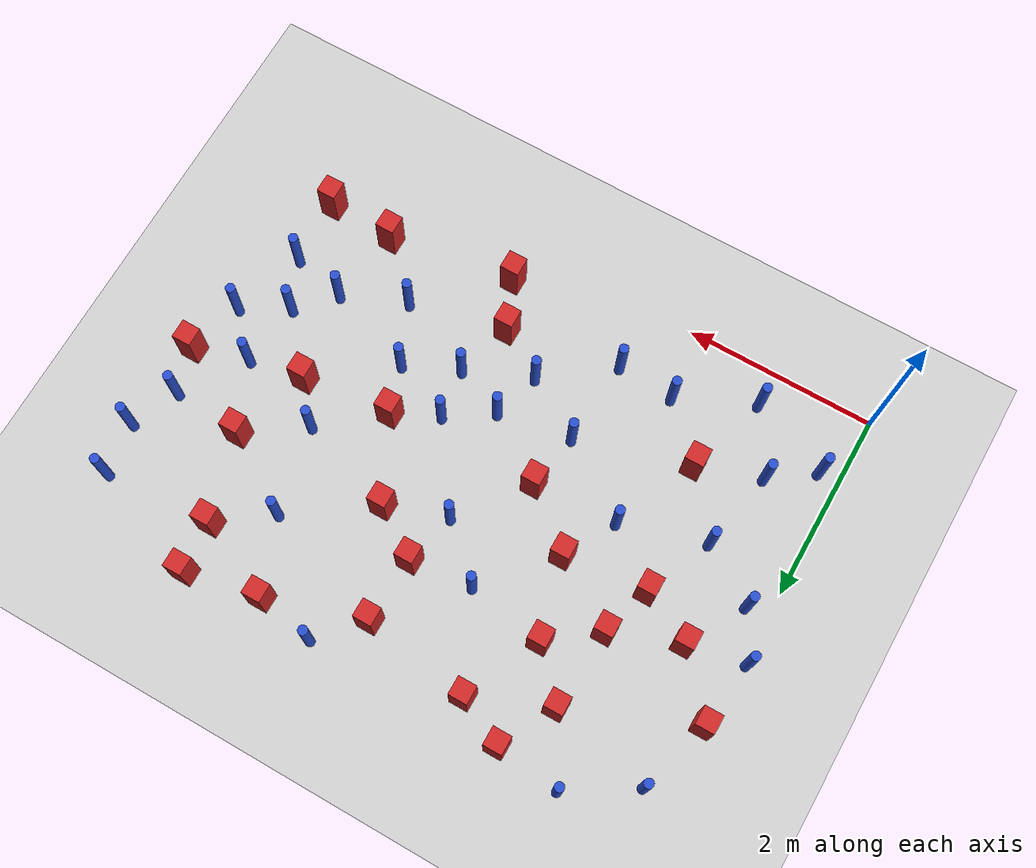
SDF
<sdf version="1.6">
 <world name="default">
  <model name="ground_plane">
   <static>1</static>
   <link name="link">
    <collision name="collision">
     <geometry><plane><normal>0 0 1</normal><size>100 100</size></plane></geometry>
     <surface><friction><ode><mu>100</mu><mu2>50</mu2></ode></friction></surface>
    </collision>
    <visual name="visual">
     <cast_shadows>0</cast_shadows>
     <geometry><plane><normal>0 0 1</normal><size>100 100</size></plane></geometry>
     <material>
      <ambient>1.0 1.0 1.0 1.0</ambient>
      <diffuse>0.8 0.8 0.8 1.0</diffuse>
      <specular>0.01 0.01 0.01 1.000000</specular>
     </material>
    </visual>
   </link>
  </model>
  <model name="square_post_obstacle2">
   <static>true</static>
   <pose>1.13025844479 2.6362197679 -6.11067671241e-07 -5.50515727128e-06 -8.79689657224e-07 2.37013304536e-05</pose>
   <link name="link">
    <pose>0 0 0.25 0 -0 0</pose>
    <inertial>
     <mass>100</mass>
     <inertia>
      <ixx>0.166667</ixx>
      <ixy>0</ixy>
      <ixz>0</ixz>
      <iyy>0.166667</iyy>
      <iyz>0</iyz>
      <izz>0.166667</izz>
     </inertia>
    </inertial>
    <collision name="collision"><geometry><box><size>.2 .2 .5</size></box></geometry></collision>
    <visual name="visual">
     <geometry><box><size>.2 .2 .5</size></box></geometry>
     <material>
      <script><name>Gazebo/Red</name><uri>file://media/materials/scripts/gazebo.material</uri></script>
     </material>
    </visual>
   </link>
  </model>
  <model name="square_post_obstacle5">
   <static>true</static>
   <pose>5.88952269268 0.614847959683 -6.11067671241e-07 -5.50515727128e-06 -8.79689657224e-07 2.37013304536e-05</pose>
   <link name="link">
    <pose>0 0 0.25 0 -0 0</pose>
    <inertial>
     <mass>100</mass>
     <inertia>
      <ixx>0.166667</ixx>
      <ixy>0</ixy>
      <ixz>0</ixz>
      <iyy>0.166667</iyy>
      <iyz>0</iyz>
      <izz>0.166667</izz>
     </inertia>
    </inertial>
    <collision name="collision"><geometry><box><size>.2 .2 .5</size></box></geometry></collision>
    <visual name="visual">
     <geometry><box><size>.2 .2 .5</size></box></geometry>
     <material>
      <script><name>Gazebo/Red</name><uri>file://media/materials/scripts/gazebo.material</uri></script>
     </material>
    </visual>
   </link>
  </model>
  <model name="square_post_obstacle6">
   <static>true</static>
   <pose>1.65782536818 4.62494805286 -6.11067671241e-07 -5.50515727128e-06 -8.79689657224e-07 2.37013304536e-05</pose>
   <link name="link">
    <pose>0 0 0.25 0 -0 0</pose>
    <inertial>
     <mass>100</mass>
     <inertia>
      <ixx>0.166667</ixx>
      <ixy>0</ixy>
      <ixz>0</ixz>
      <iyy>0.166667</iyy>
      <iyz>0</iyz>
      <izz>0.166667</izz>
     </inertia>
    </inertial>
    <collision name="collision"><geometry><box><size>.2 .2 .5</size></box></geometry></collision>
    <visual name="visual">
     <geometry><box><size>.2 .2 .5</size></box></geometry>
     <material>
      <script><name>Gazebo/Red</name><uri>file://media/materials/scripts/gazebo.material</uri></script>
     </material>
    </visual>
   </link>
  </model>
  <model name="pole_obstacle20">
   <static>true</static>
   <pose>0.233315141441 2.30578505208 -9.4761961606e-06 5.49618799729e-07 2.36310413995e-07 -1.55090534826e-07</pose>
   <link name="link">
    <pose>0 0 0.3 0 -0 0</pose>
    <inertial>
     <mass>1</mass>
     <inertia><ixx>0.145833</ixx><ixy>0</ixy><ixz>0</ixz><iyy>0.145833</iyy><iyz>0</iyz><izz>0.125</izz></inertia>
    </inertial>
    <collision name="collision">
     <geometry><cylinder><radius>0.05</radius><length>.6</length></cylinder></geometry>
    </collision>
    <visual name="visual">
     <geometry><cylinder><radius>0.05</radius><length>.6</length></cylinder></geometry>
     <material>
      <script><name>Gazebo/Blue</name><uri>file://media/materials/scripts/gazebo.material</uri></script>
     </material>
    </visual>
   </link>
  </model>
  <model name="square_post_obstacle18">
   <static>true</static>
   <pose>2.15944700012 4.38585162193 -6.11067671241e-07 -5.50515727128e-06 -8.79689657224e-07 2.37013304536e-05</pose>
   <link name="link">
    <pose>0 0 0.25 0 -0 0</pose>
    <inertial>
     <mass>100</mass>
     <inertia>
      <ixx>0.166667</ixx>
      <ixy>0</ixy>
      <ixz>0</ixz>
      <iyy>0.166667</iyy>
      <iyz>0</iyz>
      <izz>0.166667</izz>
     </inertia>
    </inertial>
    <collision name="collision"><geometry><box><size>.2 .2 .5</size></box></geometry></collision>
    <visual name="visual">
     <geometry><box><size>.2 .2 .5</size></box></geometry>
     <material>
      <script><name>Gazebo/Red</name><uri>file://media/materials/scripts/gazebo.material</uri></script>
     </material>
    </visual>
   </link>
  </model>
  <model name="pole_obstacle25">
   <static>true</static>
   <pose>5.64802174757 1.83565725501 -9.47619616065e-06 5.49618799738e-07 2.36310414071e-07 -1.55090534796e-07</pose>
   <link name="link">
    <pose>0 0 0.3 0 -0 0</pose>
    <inertial>
     <mass>1</mass>
     <inertia><ixx>0.145833</ixx><ixy>0</ixy><ixz>0</ixz><iyy>0.145833</iyy><iyz>0</iyz><izz>0.125</izz></inertia>
    </inertial>
    <collision name="collision">
     <geometry><cylinder><radius>0.05</radius><length>.6</length></cylinder></geometry>
    </collision>
    <visual name="visual">
     <geometry><cylinder><radius>0.05</radius><length>.6</length></cylinder></geometry>
     <material>
      <script><name>Gazebo/Blue</name><uri>file://media/materials/scripts/gazebo.material</uri></script>
     </material>
    </visual>
   </link>
  </model>
  <model name="square_post_obstacle21">
   <static>true</static>
   <pose>2.59968870005 2.23533736823 -6.11067671241e-07 -5.50515727128e-06 -8.79689657224e-07 2.37013304536e-05</pose>
   <link name="link">
    <pose>0 0 0.25 0 -0 0</pose>
    <inertial>
     <mass>100</mass>
     <inertia>
      <ixx>0.166667</ixx>
      <ixy>0</ixy>
      <ixz>0</ixz>
      <iyy>0.166667</iyy>
      <iyz>0</iyz>
      <izz>0.166667</izz>
     </inertia>
    </inertial>
    <collision name="collision"><geometry><box><size>.2 .2 .5</size></box></geometry></collision>
    <visual name="visual">
     <geometry><box><size>.2 .2 .5</size></box></geometry>
     <material>
      <script><name>Gazebo/Red</name><uri>file://media/materials/scripts/gazebo.material</uri></script>
     </material>
    </visual>
   </link>
  </model>
  <model name="pole_obstacle32">
   <static>true</static>
   <pose>3.80968222784 1.55839266135 -9.47619616065e-06 5.49618799737e-07 2.36310414072e-07 -1.55090534793e-07</pose>
   <link name="link">
    <pose>0 0 0.3 0 -0 0</pose>
    <inertial>
     <mass>1</mass>
     <inertia><ixx>0.145833</ixx><ixy>0</ixy><ixz>0</ixz><iyy>0.145833</iyy><iyz>0</iyz><izz>0.125</izz></inertia>
    </inertial>
    <collision name="collision">
     <geometry><cylinder><radius>0.05</radius><length>.6</length></cylinder></geometry>
    </collision>
    <visual name="visual">
     <geometry><cylinder><radius>0.05</radius><length>.6</length></cylinder></geometry>
     <material>
      <script><name>Gazebo/Blue</name><uri>file://media/materials/scripts/gazebo.material</uri></script>
     </material>
    </visual>
   </link>
  </model>
  <model name="pole_obstacle40">
   <static>true</static>
   <pose>0.969088386948 4.71727903001 -9.47619616065e-06 5.49618799737e-07 2.36310414071e-07 -1.55090534793e-07</pose>
   <link name="link">
    <pose>0 0 0.3 0 -0 0</pose>
    <inertial>
     <mass>1</mass>
     <inertia><ixx>0.145833</ixx><ixy>0</ixy><ixz>0</ixz><iyy>0.145833</iyy><iyz>0</iyz><izz>0.125</izz></inertia>
    </inertial>
    <collision name="collision">
     <geometry><cylinder><radius>0.05</radius><length>.6</length></cylinder></geometry>
    </collision>
    <visual name="visual">
     <geometry><cylinder><radius>0.05</radius><length>.6</length></cylinder></geometry>
     <material>
      <script><name>Gazebo/Blue</name><uri>file://media/materials/scripts/gazebo.material</uri></script>
     </material>
    </visual>
   </link>
  </model>
  <model name="pole_obstacle48">
   <static>true</static>
   <pose>5.87945318244 1.32466333757 -9.47619616065e-06 5.49618799738e-07 2.36310414071e-07 -1.55090534796e-07</pose>
   <link name="link">
    <pose>0 0 0.3 0 -0 0</pose>
    <inertial>
     <mass>1</mass>
     <inertia><ixx>0.145833</ixx><ixy>0</ixy><ixz>0</ixz><iyy>0.145833</iyy><iyz>0</iyz><izz>0.125</izz></inertia>
    </inertial>
    <collision name="collision">
     <geometry><cylinder><radius>0.05</radius><length>.6</length></cylinder></geometry>
    </collision>
    <visual name="visual">
     <geometry><cylinder><radius>0.05</radius><length>.6</length></cylinder></geometry>
     <material>
      <script><name>Gazebo/Blue</name><uri>file://media/materials/scripts/gazebo.material</uri></script>
     </material>
    </visual>
   </link>
  </model>
  <model name="square_post_obstacle38">
   <static>true</static>
   <pose>4.20057688196 2.3073793859 -6.11067671241e-07 -5.50515727128e-06 -8.79689657224e-07 2.37013304536e-05</pose>
   <link name="link">
    <pose>0 0 0.25 0 -0 0</pose>
    <inertial>
     <mass>100</mass>
     <inertia>
      <ixx>0.166667</ixx>
      <ixy>0</ixy>
      <ixz>0</ixz>
      <iyy>0.166667</iyy>
      <iyz>0</iyz>
      <izz>0.166667</izz>
     </inertia>
    </inertial>
    <collision name="collision"><geometry><box><size>.2 .2 .5</size></box></geometry></collision>
    <visual name="visual">
     <geometry><box><size>.2 .2 .5</size></box></geometry>
     <material>
      <script><name>Gazebo/Red</name><uri>file://media/materials/scripts/gazebo.material</uri></script>
     </material>
    </visual>
   </link>
  </model>
  <model name="square_post_obstacle42">
   <static>true</static>
   <pose>2.00754609707 2.72925937019 -6.11067671241e-07 -5.50515727128e-06 -8.79689657224e-07 2.37013304536e-05</pose>
   <link name="link">
    <pose>0 0 0.25 0 -0 0</pose>
    <inertial>
     <mass>100</mass>
     <inertia>
      <ixx>0.166667</ixx>
      <ixy>0</ixy>
      <ixz>0</ixz>
      <iyy>0.166667</iyy>
      <iyz>0</iyz>
      <izz>0.166667</izz>
     </inertia>
    </inertial>
    <collision name="collision"><geometry><box><size>.2 .2 .5</size></box></geometry></collision>
    <visual name="visual">
     <geometry><box><size>.2 .2 .5</size></box></geometry>
     <material>
      <script><name>Gazebo/Red</name><uri>file://media/materials/scripts/gazebo.material</uri></script>
     </material>
    </visual>
   </link>
  </model>
  <model name="pole_obstacle64">
   <static>true</static>
   <pose>2.50328465005 1.6448217985 -9.47619616065e-06 5.49618799737e-07 2.36310414072e-07 -1.55090534793e-07</pose>
   <link name="link">
    <pose>0 0 0.3 0 -0 0</pose>
    <inertial>
     <mass>1</mass>
     <inertia><ixx>0.145833</ixx><ixy>0</ixy><ixz>0</ixz><iyy>0.145833</iyy><iyz>0</iyz><izz>0.125</izz></inertia>
    </inertial>
    <collision name="collision">
     <geometry><cylinder><radius>0.05</radius><length>.6</length></cylinder></geometry>
    </collision>
    <visual name="visual">
     <geometry><cylinder><radius>0.05</radius><length>.6</length></cylinder></geometry>
     <material>
      <script><name>Gazebo/Blue</name><uri>file://media/materials/scripts/gazebo.material</uri></script>
     </material>
    </visual>
   </link>
  </model>
  <model name="square_post_obstacle56">
   <static>true</static>
   <pose>5.0938575187 4.67046492371 -6.11067671241e-07 -5.50515727128e-06 -8.79689657224e-07 2.37013304536e-05</pose>
   <link name="link">
    <pose>0 0 0.25 0 -0 0</pose>
    <inertial>
     <mass>100</mass>
     <inertia>
      <ixx>0.166667</ixx>
      <ixy>0</ixy>
      <ixz>0</ixz>
      <iyy>0.166667</iyy>
      <iyz>0</iyz>
      <izz>0.166667</izz>
     </inertia>
    </inertial>
    <collision name="collision"><geometry><box><size>.2 .2 .5</size></box></geometry></collision>
    <visual name="visual">
     <geometry><box><size>.2 .2 .5</size></box></geometry>
     <material>
      <script><name>Gazebo/Red</name><uri>file://media/materials/scripts/gazebo.material</uri></script>
     </material>
    </visual>
   </link>
  </model>
  <model name="square_post_obstacle59">
   <static>true</static>
   <pose>3.63191219583 0.946105516965 -6.11067671241e-07 -5.50515727128e-06 -8.79689657224e-07 2.37013304536e-05</pose>
   <link name="link">
    <pose>0 0 0.25 0 -0 0</pose>
    <inertial>
     <mass>100</mass>
     <inertia>
      <ixx>0.166667</ixx>
      <ixy>0</ixy>
      <ixz>0</ixz>
      <iyy>0.166667</iyy>
      <iyz>0</iyz>
      <izz>0.166667</izz>
     </inertia>
    </inertial>
    <collision name="collision"><geometry><box><size>.2 .2 .5</size></box></geometry></collision>
    <visual name="visual">
     <geometry><box><size>.2 .2 .5</size></box></geometry>
     <material>
      <script><name>Gazebo/Red</name><uri>file://media/materials/scripts/gazebo.material</uri></script>
     </material>
    </visual>
   </link>
  </model>
  <model name="pole_obstacle71">
   <static>true</static>
   <pose>0.824930707009 1.92487184891 -9.47619616065e-06 5.49618799738e-07 2.36310414061e-07 -1.55090534801e-07</pose>
   <link name="link">
    <pose>0 0 0.3 0 -0 0</pose>
    <inertial>
     <mass>1</mass>
     <inertia><ixx>0.145833</ixx><ixy>0</ixy><ixz>0</ixz><iyy>0.145833</iyy><iyz>0</iyz><izz>0.125</izz></inertia>
    </inertial>
    <collision name="collision">
     <geometry><cylinder><radius>0.05</radius><length>.6</length></cylinder></geometry>
    </collision>
    <visual name="visual">
     <geometry><cylinder><radius>0.05</radius><length>.6</length></cylinder></geometry>
     <material>
      <script><name>Gazebo/Blue</name><uri>file://media/materials/scripts/gazebo.material</uri></script>
     </material>
    </visual>
   </link>
  </model>
  <model name="pole_obstacle74">
   <static>true</static>
   <pose>2.61030891572 3.43852346673 -9.47619616065e-06 5.49618799737e-07 2.36310414051e-07 -1.55090534807e-07</pose>
   <link name="link">
    <pose>0 0 0.3 0 -0 0</pose>
    <inertial>
     <mass>1</mass>
     <inertia><ixx>0.145833</ixx><ixy>0</ixy><ixz>0</ixz><iyy>0.145833</iyy><iyz>0</iyz><izz>0.125</izz></inertia>
    </inertial>
    <collision name="collision">
     <geometry><cylinder><radius>0.05</radius><length>.6</length></cylinder></geometry>
    </collision>
    <visual name="visual">
     <geometry><cylinder><radius>0.05</radius><length>.6</length></cylinder></geometry>
     <material>
      <script><name>Gazebo/Blue</name><uri>file://media/materials/scripts/gazebo.material</uri></script>
     </material>
    </visual>
   </link>
  </model>
  <model name="pole_obstacle75">
   <static>true</static>
   <pose>-0.0245611385394 2.7983421891 -9.47619616065e-06 5.49618799737e-07 2.36310414067e-07 -1.55090534795e-07</pose>
   <link name="link">
    <pose>0 0 0.3 0 -0 0</pose>
    <inertial>
     <mass>1</mass>
     <inertia><ixx>0.145833</ixx><ixy>0</ixy><ixz>0</ixz><iyy>0.145833</iyy><iyz>0</iyz><izz>0.125</izz></inertia>
    </inertial>
    <collision name="collision">
     <geometry><cylinder><radius>0.05</radius><length>.6</length></cylinder></geometry>
    </collision>
    <visual name="visual">
     <geometry><cylinder><radius>0.05</radius><length>.6</length></cylinder></geometry>
     <material>
      <script><name>Gazebo/Blue</name><uri>file://media/materials/scripts/gazebo.material</uri></script>
     </material>
    </visual>
   </link>
  </model>
  <model name="pole_obstacle81">
   <static>true</static>
   <pose>3.73980759571 2.08101690832 -9.47619616065e-06 5.49618799737e-07 2.36310414051e-07 -1.55090534807e-07</pose>
   <link name="link">
    <pose>0 0 0.3 0 -0 0</pose>
    <inertial>
     <mass>1</mass>
     <inertia><ixx>0.145833</ixx><ixy>0</ixy><ixz>0</ixz><iyy>0.145833</iyy><iyz>0</iyz><izz>0.125</izz></inertia>
    </inertial>
    <collision name="collision">
     <geometry><cylinder><radius>0.05</radius><length>.6</length></cylinder></geometry>
    </collision>
    <visual name="visual">
     <geometry><cylinder><radius>0.05</radius><length>.6</length></cylinder></geometry>
     <material>
      <script><name>Gazebo/Blue</name><uri>file://media/materials/scripts/gazebo.material</uri></script>
     </material>
    </visual>
   </link>
  </model>
  <model name="square_post_obstacle72">
   <static>true</static>
   <pose>3.77116307379 3.15857029598 -6.11067671241e-07 -5.50515727128e-06 -8.79689657224e-07 2.37013304536e-05</pose>
   <link name="link">
    <pose>0 0 0.25 0 -0 0</pose>
    <inertial>
     <mass>100</mass>
     <inertia>
      <ixx>0.166667</ixx>
      <ixy>0</ixy>
      <ixz>0</ixz>
      <iyy>0.166667</iyy>
      <iyz>0</iyz>
      <izz>0.166667</izz>
     </inertia>
    </inertial>
    <collision name="collision"><geometry><box><size>.2 .2 .5</size></box></geometry></collision>
    <visual name="visual">
     <geometry><box><size>.2 .2 .5</size></box></geometry>
     <material>
      <script><name>Gazebo/Red</name><uri>file://media/materials/scripts/gazebo.material</uri></script>
     </material>
    </visual>
   </link>
  </model>
  <model name="square_post_obstacle74">
   <static>true</static>
   <pose>1.78813248405 3.57024197505 -6.11067671241e-07 -5.50515727128e-06 -8.79689657224e-07 2.37013304536e-05</pose>
   <link name="link">
    <pose>0 0 0.25 0 -0 0</pose>
    <inertial>
     <mass>100</mass>
     <inertia>
      <ixx>0.166667</ixx>
      <ixy>0</ixy>
      <ixz>0</ixz>
      <iyy>0.166667</iyy>
      <iyz>0</iyz>
      <izz>0.166667</izz>
     </inertia>
    </inertial>
    <collision name="collision"><geometry><box><size>.2 .2 .5</size></box></geometry></collision>
    <visual name="visual">
     <geometry><box><size>.2 .2 .5</size></box></geometry>
     <material>
      <script><name>Gazebo/Red</name><uri>file://media/materials/scripts/gazebo.material</uri></script>
     </material>
    </visual>
   </link>
  </model>
  <model name="square_post_obstacle88">
   <static>true</static>
   <pose>3.29493373662 4.19754470071 -6.11067671241e-07 -5.50515727128e-06 -8.79689657224e-07 2.37013304536e-05</pose>
   <link name="link">
    <pose>0 0 0.25 0 -0 0</pose>
    <inertial>
     <mass>100</mass>
     <inertia>
      <ixx>0.166667</ixx>
      <ixy>0</ixy>
      <ixz>0</ixz>
      <iyy>0.166667</iyy>
      <iyz>0</iyz>
      <izz>0.166667</izz>
     </inertia>
    </inertial>
    <collision name="collision"><geometry><box><size>.2 .2 .5</size></box></geometry></collision>
    <visual name="visual">
     <geometry><box><size>.2 .2 .5</size></box></geometry>
     <material>
      <script><name>Gazebo/Red</name><uri>file://media/materials/scripts/gazebo.material</uri></script>
     </material>
    </visual>
   </link>
  </model>
  <model name="square_post_obstacle89">
   <static>true</static>
   <pose>3.26607793863 3.49830744875 -6.11067671241e-07 -5.50515727128e-06 -8.79689657224e-07 2.37013304536e-05</pose>
   <link name="link">
    <pose>0 0 0.25 0 -0 0</pose>
    <inertial>
     <mass>100</mass>
     <inertia>
      <ixx>0.166667</ixx>
      <ixy>0</ixy>
      <ixz>0</ixz>
      <iyy>0.166667</iyy>
      <iyz>0</iyz>
      <izz>0.166667</izz>
     </inertia>
    </inertial>
    <collision name="collision"><geometry><box><size>.2 .2 .5</size></box></geometry></collision>
    <visual name="visual">
     <geometry><box><size>.2 .2 .5</size></box></geometry>
     <material>
      <script><name>Gazebo/Red</name><uri>file://media/materials/scripts/gazebo.material</uri></script>
     </material>
    </visual>
   </link>
  </model>
  <model name="pole_obstacle105">
   <static>true</static>
   <pose>4.80990252504 2.81507959918 -9.47619616065e-06 5.49618799738e-07 2.36310414051e-07 -1.55090534805e-07</pose>
   <link name="link">
    <pose>0 0 0.3 0 -0 0</pose>
    <inertial>
     <mass>1</mass>
     <inertia><ixx>0.145833</ixx><ixy>0</ixy><ixz>0</ixz><iyy>0.145833</iyy><iyz>0</iyz><izz>0.125</izz></inertia>
    </inertial>
    <collision name="collision">
     <geometry><cylinder><radius>0.05</radius><length>.6</length></cylinder></geometry>
    </collision>
    <visual name="visual">
     <geometry><cylinder><radius>0.05</radius><length>.6</length></cylinder></geometry>
     <material>
      <script><name>Gazebo/Blue</name><uri>file://media/materials/scripts/gazebo.material</uri></script>
     </material>
    </visual>
   </link>
  </model>
  <model name="pole_obstacle109">
   <static>true</static>
   <pose>0.659509214106 1.07007478372 -9.47619616065e-06 5.49618799738e-07 2.36310414061e-07 -1.55090534801e-07</pose>
   <link name="link">
    <pose>0 0 0.3 0 -0 0</pose>
    <inertial>
     <mass>1</mass>
     <inertia><ixx>0.145833</ixx><ixy>0</ixy><ixz>0</ixz><iyy>0.145833</iyy><iyz>0</iyz><izz>0.125</izz></inertia>
    </inertial>
    <collision name="collision">
     <geometry><cylinder><radius>0.05</radius><length>.6</length></cylinder></geometry>
    </collision>
    <visual name="visual">
     <geometry><cylinder><radius>0.05</radius><length>.6</length></cylinder></geometry>
     <material>
      <script><name>Gazebo/Blue</name><uri>file://media/materials/scripts/gazebo.material</uri></script>
     </material>
    </visual>
   </link>
  </model>
  <model name="pole_obstacle110">
   <static>true</static>
   <pose>6.15907162267 3.17417994833 -9.47619616065e-06 5.49618799738e-07 2.36310414051e-07 -1.55090534805e-07</pose>
   <link name="link">
    <pose>0 0 0.3 0 -0 0</pose>
    <inertial>
     <mass>1</mass>
     <inertia><ixx>0.145833</ixx><ixy>0</ixy><ixz>0</ixz><iyy>0.145833</iyy><iyz>0</iyz><izz>0.125</izz></inertia>
    </inertial>
    <collision name="collision">
     <geometry><cylinder><radius>0.05</radius><length>.6</length></cylinder></geometry>
    </collision>
    <visual name="visual">
     <geometry><cylinder><radius>0.05</radius><length>.6</length></cylinder></geometry>
     <material>
      <script><name>Gazebo/Blue</name><uri>file://media/materials/scripts/gazebo.material</uri></script>
     </material>
    </visual>
   </link>
  </model>
  <model name="pole_obstacle114">
   <static>true</static>
   <pose>4.64357170734 1.18667466715 -9.47619616065e-06 5.49618799738e-07 2.36310414071e-07 -1.55090534796e-07</pose>
   <link name="link">
    <pose>0 0 0.3 0 -0 0</pose>
    <inertial>
     <mass>1</mass>
     <inertia><ixx>0.145833</ixx><ixy>0</ixy><ixz>0</ixz><iyy>0.145833</iyy><iyz>0</iyz><izz>0.125</izz></inertia>
    </inertial>
    <collision name="collision">
     <geometry><cylinder><radius>0.05</radius><length>.6</length></cylinder></geometry>
    </collision>
    <visual name="visual">
     <geometry><cylinder><radius>0.05</radius><length>.6</length></cylinder></geometry>
     <material>
      <script><name>Gazebo/Blue</name><uri>file://media/materials/scripts/gazebo.material</uri></script>
     </material>
    </visual>
   </link>
  </model>
  <model name="square_post_obstacle124">
   <static>true</static>
   <pose>5.13347633636 2.41383809255 -6.11067671241e-07 -5.50515727128e-06 -8.79689657224e-07 2.37013304536e-05</pose>
   <link name="link">
    <pose>0 0 0.25 0 -0 0</pose>
    <inertial>
     <mass>100</mass>
     <inertia>
      <ixx>0.166667</ixx>
      <ixy>0</ixy>
      <ixz>0</ixz>
      <iyy>0.166667</iyy>
      <iyz>0</iyz>
      <izz>0.166667</izz>
     </inertia>
    </inertial>
    <collision name="collision"><geometry><box><size>.2 .2 .5</size></box></geometry></collision>
    <visual name="visual">
     <geometry><box><size>.2 .2 .5</size></box></geometry>
     <material>
      <script><name>Gazebo/Red</name><uri>file://media/materials/scripts/gazebo.material</uri></script>
     </material>
    </visual>
   </link>
  </model>
  <model name="square_post_obstacle128">
   <static>true</static>
   <pose>0.072463207387 3.50576076686 -6.11067671241e-07 -5.50515727128e-06 -8.79689657224e-07 2.37013304536e-05</pose>
   <link name="link">
    <pose>0 0 0.25 0 -0 0</pose>
    <inertial>
     <mass>100</mass>
     <inertia>
      <ixx>0.166667</ixx>
      <ixy>0</ixy>
      <ixz>0</ixz>
      <iyy>0.166667</iyy>
      <iyz>0</iyz>
      <izz>0.166667</izz>
     </inertia>
    </inertial>
    <collision name="collision"><geometry><box><size>.2 .2 .5</size></box></geometry></collision>
    <visual name="visual">
     <geometry><box><size>.2 .2 .5</size></box></geometry>
     <material>
      <script><name>Gazebo/Red</name><uri>file://media/materials/scripts/gazebo.material</uri></script>
     </material>
    </visual>
   </link>
  </model>
  <model name="square_post_obstacle130">
   <static>true</static>
   <pose>4.31256003457 4.52267948003 -6.11067671241e-07 -5.50515727128e-06 -8.79689657224e-07 2.37013304536e-05</pose>
   <link name="link">
    <pose>0 0 0.25 0 -0 0</pose>
    <inertial>
     <mass>100</mass>
     <inertia>
      <ixx>0.166667</ixx>
      <ixy>0</ixy>
      <ixz>0</ixz>
      <iyy>0.166667</iyy>
      <iyz>0</iyz>
      <izz>0.166667</izz>
     </inertia>
    </inertial>
    <collision name="collision"><geometry><box><size>.2 .2 .5</size></box></geometry></collision>
    <visual name="visual">
     <geometry><box><size>.2 .2 .5</size></box></geometry>
     <material>
      <script><name>Gazebo/Red</name><uri>file://media/materials/scripts/gazebo.material</uri></script>
     </material>
    </visual>
   </link>
  </model>
  <model name="square_post_obstacle134">
   <static>true</static>
   <pose>3.85312435669 0.4276040397 -6.11067671241e-07 -5.50515727128e-06 -8.79689657224e-07 2.37013304536e-05</pose>
   <link name="link">
    <pose>0 0 0.25 0 -0 0</pose>
    <inertial>
     <mass>100</mass>
     <inertia>
      <ixx>0.166667</ixx>
      <ixy>0</ixy>
      <ixz>0</ixz>
      <iyy>0.166667</iyy>
      <iyz>0</iyz>
      <izz>0.166667</izz>
     </inertia>
    </inertial>
    <collision name="collision"><geometry><box><size>.2 .2 .5</size></box></geometry></collision>
    <visual name="visual">
     <geometry><box><size>.2 .2 .5</size></box></geometry>
     <material>
      <script><name>Gazebo/Red</name><uri>file://media/materials/scripts/gazebo.material</uri></script>
     </material>
    </visual>
   </link>
  </model>
  <model name="pole_obstacle141">
   <static>true</static>
   <pose>1.05071538376 0.401818365964 -9.47619616065e-06 5.49618799737e-07 2.36310414064e-07 -1.55090534799e-07</pose>
   <link name="link">
    <pose>0 0 0.3 0 -0 0</pose>
    <inertial>
     <mass>1</mass>
     <inertia><ixx>0.145833</ixx><ixy>0</ixy><ixz>0</ixz><iyy>0.145833</iyy><iyz>0</iyz><izz>0.125</izz></inertia>
    </inertial>
    <collision name="collision">
     <geometry><cylinder><radius>0.05</radius><length>.6</length></cylinder></geometry>
    </collision>
    <visual name="visual">
     <geometry><cylinder><radius>0.05</radius><length>.6</length></cylinder></geometry>
     <material>
      <script><name>Gazebo/Blue</name><uri>file://media/materials/scripts/gazebo.material</uri></script>
     </material>
    </visual>
   </link>
  </model>
  <model name="pole_obstacle160">
   <static>true</static>
   <pose>0.291858200417 4.29498473534 -9.47619616065e-06 5.49618799737e-07 2.36310414067e-07 -1.55090534795e-07</pose>
   <link name="link">
    <pose>0 0 0.3 0 -0 0</pose>
    <inertial>
     <mass>1</mass>
     <inertia><ixx>0.145833</ixx><ixy>0</ixy><ixz>0</ixz><iyy>0.145833</iyy><iyz>0</iyz><izz>0.125</izz></inertia>
    </inertial>
    <collision name="collision">
     <geometry><cylinder><radius>0.05</radius><length>.6</length></cylinder></geometry>
    </collision>
    <visual name="visual">
     <geometry><cylinder><radius>0.05</radius><length>.6</length></cylinder></geometry>
     <material>
      <script><name>Gazebo/Blue</name><uri>file://media/materials/scripts/gazebo.material</uri></script>
     </material>
    </visual>
   </link>
  </model>
  <model name="pole_obstacle161">
   <static>true</static>
   <pose>4.36725999786 1.8096444674 -9.47619616065e-06 5.49618799738e-07 2.36310414071e-07 -1.55090534796e-07</pose>
   <link name="link">
    <pose>0 0 0.3 0 -0 0</pose>
    <inertial>
     <mass>1</mass>
     <inertia><ixx>0.145833</ixx><ixy>0</ixy><ixz>0</ixz><iyy>0.145833</iyy><iyz>0</iyz><izz>0.125</izz></inertia>
    </inertial>
    <collision name="collision">
     <geometry><cylinder><radius>0.05</radius><length>.6</length></cylinder></geometry>
    </collision>
    <visual name="visual">
     <geometry><cylinder><radius>0.05</radius><length>.6</length></cylinder></geometry>
     <material>
      <script><name>Gazebo/Blue</name><uri>file://media/materials/scripts/gazebo.material</uri></script>
     </material>
    </visual>
   </link>
  </model>
  <model name="pole_obstacle163">
   <static>true</static>
   <pose>4.61548646054 3.74724444321 -9.47619616065e-06 5.49618799738e-07 2.36310414051e-07 -1.55090534805e-07</pose>
   <link name="link">
    <pose>0 0 0.3 0 -0 0</pose>
    <inertial>
     <mass>1</mass>
     <inertia><ixx>0.145833</ixx><ixy>0</ixy><ixz>0</ixz><iyy>0.145833</iyy><iyz>0</iyz><izz>0.125</izz></inertia>
    </inertial>
    <collision name="collision">
     <geometry><cylinder><radius>0.05</radius><length>.6</length></cylinder></geometry>
    </collision>
    <visual name="visual">
     <geometry><cylinder><radius>0.05</radius><length>.6</length></cylinder></geometry>
     <material>
      <script><name>Gazebo/Blue</name><uri>file://media/materials/scripts/gazebo.material</uri></script>
     </material>
    </visual>
   </link>
  </model>
  <model name="square_post_obstacle155">
   <static>true</static>
   <pose>5.17549668945 0.650259538135 -6.11067671241e-07 -5.50515727128e-06 -8.79689657224e-07 2.37013304536e-05</pose>
   <link name="link">
    <pose>0 0 0.25 0 -0 0</pose>
    <inertial>
     <mass>100</mass>
     <inertia>
      <ixx>0.166667</ixx>
      <ixy>0</ixy>
      <ixz>0</ixz>
      <iyy>0.166667</iyy>
      <iyz>0</iyz>
      <izz>0.166667</izz>
     </inertia>
    </inertial>
    <collision name="collision"><geometry><box><size>.2 .2 .5</size></box></geometry></collision>
    <visual name="visual">
     <geometry><box><size>.2 .2 .5</size></box></geometry>
     <material>
      <script><name>Gazebo/Red</name><uri>file://media/materials/scripts/gazebo.material</uri></script>
     </material>
    </visual>
   </link>
  </model>
  <model name="pole_obstacle165">
   <static>true</static>
   <pose>1.84302016453 0.774022494542 -9.47619616065e-06 5.49618799737e-07 2.36310414065e-07 -1.55090534798e-07</pose>
   <link name="link">
    <pose>0 0 0.3 0 -0 0</pose>
    <inertial>
     <mass>1</mass>
     <inertia><ixx>0.145833</ixx><ixy>0</ixy><ixz>0</ixz><iyy>0.145833</iyy><iyz>0</iyz><izz>0.125</izz></inertia>
    </inertial>
    <collision name="collision">
     <geometry><cylinder><radius>0.05</radius><length>.6</length></cylinder></geometry>
    </collision>
    <visual name="visual">
     <geometry><cylinder><radius>0.05</radius><length>.6</length></cylinder></geometry>
     <material>
      <script><name>Gazebo/Blue</name><uri>file://media/materials/scripts/gazebo.material</uri></script>
     </material>
    </visual>
   </link>
  </model>
  <model name="square_post_obstacle165">
   <static>true</static>
   <pose>1.32496449962 1.29410926302 -6.11067671241e-07 -5.50515727128e-06 -8.79689657224e-07 2.37013304536e-05</pose>
   <link name="link">
    <pose>0 0 0.25 0 -0 0</pose>
    <inertial>
     <mass>100</mass>
     <inertia>
      <ixx>0.166667</ixx>
      <ixy>0</ixy>
      <ixz>0</ixz>
      <iyy>0.166667</iyy>
      <iyz>0</iyz>
      <izz>0.166667</izz>
     </inertia>
    </inertial>
    <collision name="collision"><geometry><box><size>.2 .2 .5</size></box></geometry></collision>
    <visual name="visual">
     <geometry><box><size>.2 .2 .5</size></box></geometry>
     <material>
      <script><name>Gazebo/Red</name><uri>file://media/materials/scripts/gazebo.material</uri></script>
     </material>
    </visual>
   </link>
  </model>
  <model name="square_post_obstacle168">
   <static>true</static>
   <pose>5.39924102178 3.22792497841 -6.11067671241e-07 -5.50515727128e-06 -8.79689657224e-07 2.37013304536e-05</pose>
   <link name="link">
    <pose>0 0 0.25 0 -0 0</pose>
    <inertial>
     <mass>100</mass>
     <inertia>
      <ixx>0.166667</ixx>
      <ixy>0</ixy>
      <ixz>0</ixz>
      <iyy>0.166667</iyy>
      <iyz>0</iyz>
      <izz>0.166667</izz>
     </inertia>
    </inertial>
    <collision name="collision"><geometry><box><size>.2 .2 .5</size></box></geometry></collision>
    <visual name="visual">
     <geometry><box><size>.2 .2 .5</size></box></geometry>
     <material>
      <script><name>Gazebo/Red</name><uri>file://media/materials/scripts/gazebo.material</uri></script>
     </material>
    </visual>
   </link>
  </model>
  <model name="pole_obstacle173">
   <static>true</static>
   <pose>6.37690560655 3.67156398506 -9.47619616065e-06 5.49618799738e-07 2.36310414051e-07 -1.55090534805e-07</pose>
   <link name="link">
    <pose>0 0 0.3 0 -0 0</pose>
    <inertial>
     <mass>1</mass>
     <inertia><ixx>0.145833</ixx><ixy>0</ixy><ixz>0</ixz><iyy>0.145833</iyy><iyz>0</iyz><izz>0.125</izz></inertia>
    </inertial>
    <collision name="collision">
     <geometry><cylinder><radius>0.05</radius><length>.6</length></cylinder></geometry>
    </collision>
    <visual name="visual">
     <geometry><cylinder><radius>0.05</radius><length>.6</length></cylinder></geometry>
     <material>
      <script><name>Gazebo/Blue</name><uri>file://media/materials/scripts/gazebo.material</uri></script>
     </material>
    </visual>
   </link>
  </model>
  <model name="pole_obstacle175">
   <static>true</static>
   <pose>6.13062940145 2.09622574603 -9.47619616065e-06 5.49618799738e-07 2.36310414051e-07 -1.55090534805e-07</pose>
   <link name="link">
    <pose>0 0 0.3 0 -0 0</pose>
    <inertial>
     <mass>1</mass>
     <inertia><ixx>0.145833</ixx><ixy>0</ixy><ixz>0</ixz><iyy>0.145833</iyy><iyz>0</iyz><izz>0.125</izz></inertia>
    </inertial>
    <collision name="collision">
     <geometry><cylinder><radius>0.05</radius><length>.6</length></cylinder></geometry>
    </collision>
    <visual name="visual">
     <geometry><cylinder><radius>0.05</radius><length>.6</length></cylinder></geometry>
     <material>
      <script><name>Gazebo/Blue</name><uri>file://media/materials/scripts/gazebo.material</uri></script>
     </material>
    </visual>
   </link>
  </model>
  <model name="pole_obstacle176">
   <static>true</static>
   <pose>2.44680893375 0.734155278464 -9.47619616065e-06 5.49618799738e-07 2.36310414075e-07 -1.55090534793e-07</pose>
   <link name="link">
    <pose>0 0 0.3 0 -0 0</pose>
    <inertial>
     <mass>1</mass>
     <inertia><ixx>0.145833</ixx><ixy>0</ixy><ixz>0</ixz><iyy>0.145833</iyy><iyz>0</iyz><izz>0.125</izz></inertia>
    </inertial>
    <collision name="collision">
     <geometry><cylinder><radius>0.05</radius><length>.6</length></cylinder></geometry>
    </collision>
    <visual name="visual">
     <geometry><cylinder><radius>0.05</radius><length>.6</length></cylinder></geometry>
     <material>
      <script><name>Gazebo/Blue</name><uri>file://media/materials/scripts/gazebo.material</uri></script>
     </material>
    </visual>
   </link>
  </model>
  <model name="pole_obstacle178">
   <static>true</static>
   <pose>3.12938157871 1.26340740039 -9.47619616065e-06 5.49618799737e-07 2.36310414072e-07 -1.55090534793e-07</pose>
   <link name="link">
    <pose>0 0 0.3 0 -0 0</pose>
    <inertial>
     <mass>1</mass>
     <inertia><ixx>0.145833</ixx><ixy>0</ixy><ixz>0</ixz><iyy>0.145833</iyy><iyz>0</iyz><izz>0.125</izz></inertia>
    </inertial>
    <collision name="collision">
     <geometry><cylinder><radius>0.05</radius><length>.6</length></cylinder></geometry>
    </collision>
    <visual name="visual">
     <geometry><cylinder><radius>0.05</radius><length>.6</length></cylinder></geometry>
     <material>
      <script><name>Gazebo/Blue</name><uri>file://media/materials/scripts/gazebo.material</uri></script>
     </material>
    </visual>
   </link>
  </model>
  <model name="square_post_obstacle176">
   <static>true</static>
   <pose>6.28865820508 2.6858496088 -6.11067671241e-07 -5.50515727128e-06 -8.79689657224e-07 2.37013304536e-05</pose>
   <link name="link">
    <pose>0 0 0.25 0 -0 0</pose>
    <inertial>
     <mass>100</mass>
     <inertia>
      <ixx>0.166667</ixx>
      <ixy>0</ixy>
      <ixz>0</ixz>
      <iyy>0.166667</iyy>
      <iyz>0</iyz>
      <izz>0.166667</izz>
     </inertia>
    </inertial>
    <collision name="collision"><geometry><box><size>.2 .2 .5</size></box></geometry></collision>
    <visual name="visual">
     <geometry><box><size>.2 .2 .5</size></box></geometry>
     <material>
      <script><name>Gazebo/Red</name><uri>file://media/materials/scripts/gazebo.material</uri></script>
     </material>
    </visual>
   </link>
  </model>
  <model name="pole_obstacle180">
   <static>true</static>
   <pose>0.21635786636 0.745096928322 -9.47619616065e-06 5.49618799737e-07 2.36310414057e-07 -1.55090534802e-07</pose>
   <link name="link">
    <pose>0 0 0.3 0 -0 0</pose>
    <inertial>
     <mass>1</mass>
     <inertia><ixx>0.145833</ixx><ixy>0</ixy><ixz>0</ixz><iyy>0.145833</iyy><iyz>0</iyz><izz>0.125</izz></inertia>
    </inertial>
    <collision name="collision">
     <geometry><cylinder><radius>0.05</radius><length>.6</length></cylinder></geometry>
    </collision>
    <visual name="visual">
     <geometry><cylinder><radius>0.05</radius><length>.6</length></cylinder></geometry>
     <material>
      <script><name>Gazebo/Blue</name><uri>file://media/materials/scripts/gazebo.material</uri></script>
     </material>
    </visual>
   </link>
  </model>
  <model name="pole_obstacle182">
   <static>true</static>
   <pose>5.72439411636 2.52114542828 -9.47619616065e-06 5.49618799738e-07 2.36310414051e-07 -1.55090534805e-07</pose>
   <link name="link">
    <pose>0 0 0.3 0 -0 0</pose>
    <inertial>
     <mass>1</mass>
     <inertia><ixx>0.145833</ixx><ixy>0</ixy><ixz>0</ixz><iyy>0.145833</iyy><iyz>0</iyz><izz>0.125</izz></inertia>
    </inertial>
    <collision name="collision">
     <geometry><cylinder><radius>0.05</radius><length>.6</length></cylinder></geometry>
    </collision>
    <visual name="visual">
     <geometry><cylinder><radius>0.05</radius><length>.6</length></cylinder></geometry>
     <material>
      <script><name>Gazebo/Blue</name><uri>file://media/materials/scripts/gazebo.material</uri></script>
     </material>
    </visual>
   </link>
  </model>
  <model name="pole_obstacle184">
   <static>true</static>
   <pose>1.7093378805 2.19028594338 -9.47619616065e-06 5.49618799737e-07 2.36310414062e-07 -1.55090534798e-07</pose>
   <link name="link">
    <pose>0 0 0.3 0 -0 0</pose>
    <inertial>
     <mass>1</mass>
     <inertia><ixx>0.145833</ixx><ixy>0</ixy><ixz>0</ixz><iyy>0.145833</iyy><iyz>0</iyz><izz>0.125</izz></inertia>
    </inertial>
    <collision name="collision">
     <geometry><cylinder><radius>0.05</radius><length>.6</length></cylinder></geometry>
    </collision>
    <visual name="visual">
     <geometry><cylinder><radius>0.05</radius><length>.6</length></cylinder></geometry>
     <material>
      <script><name>Gazebo/Blue</name><uri>file://media/materials/scripts/gazebo.material</uri></script>
     </material>
    </visual>
   </link>
  </model>
  <model name="pole_obstacle185">
   <static>true</static>
   <pose>3.27535633974 1.7744516104 -9.47619616065e-06 5.49618799737e-07 2.36310414072e-07 -1.55090534793e-07</pose>
   <link name="link">
    <pose>0 0 0.3 0 -0 0</pose>
    <inertial>
     <mass>1</mass>
     <inertia><ixx>0.145833</ixx><ixy>0</ixy><ixz>0</ixz><iyy>0.145833</iyy><iyz>0</iyz><izz>0.125</izz></inertia>
    </inertial>
    <collision name="collision">
     <geometry><cylinder><radius>0.05</radius><length>.6</length></cylinder></geometry>
    </collision>
    <visual name="visual">
     <geometry><cylinder><radius>0.05</radius><length>.6</length></cylinder></geometry>
     <material>
      <script><name>Gazebo/Blue</name><uri>file://media/materials/scripts/gazebo.material</uri></script>
     </material>
    </visual>
   </link>
  </model>
  <model name="square_post_obstacle187">
   <static>true</static>
   <pose>5.14011438375 4.13778150561 -6.11067671241e-07 -5.50515727128e-06 -8.79689657224e-07 2.37013304536e-05</pose>
   <link name="link">
    <pose>0 0 0.25 0 -0 0</pose>
    <inertial>
     <mass>100</mass>
     <inertia>
      <ixx>0.166667</ixx>
      <ixy>0</ixy>
      <ixz>0</ixz>
      <iyy>0.166667</iyy>
      <iyz>0</iyz>
      <izz>0.166667</izz>
     </inertia>
    </inertial>
    <collision name="collision"><geometry><box><size>.2 .2 .5</size></box></geometry></collision>
    <visual name="visual">
     <geometry><box><size>.2 .2 .5</size></box></geometry>
     <material>
      <script><name>Gazebo/Red</name><uri>file://media/materials/scripts/gazebo.material</uri></script>
     </material>
    </visual>
   </link>
  </model>
  <model name="square_post_obstacle194">
   <static>true</static>
   <pose>1.29689902351 3.18273300114 -6.11067671241e-07 -5.50515727128e-06 -8.79689657224e-07 2.37013304536e-05</pose>
   <link name="link">
    <pose>0 0 0.25 0 -0 0</pose>
    <inertial>
     <mass>100</mass>
     <inertia>
      <ixx>0.166667</ixx>
      <ixy>0</ixy>
      <ixz>0</ixz>
      <iyy>0.166667</iyy>
      <iyz>0</iyz>
      <izz>0.166667</izz>
     </inertia>
    </inertial>
    <collision name="collision"><geometry><box><size>.2 .2 .5</size></box></geometry></collision>
    <visual name="visual">
     <geometry><box><size>.2 .2 .5</size></box></geometry>
     <material>
      <script><name>Gazebo/Red</name><uri>file://media/materials/scripts/gazebo.material</uri></script>
     </material>
    </visual>
   </link>
  </model>
  <model name="square_post_obstacle203">
   <static>true</static>
   <pose>1.35244450915 4.04246534154 -6.11067671241e-07 -5.50515727128e-06 -8.79689657224e-07 2.37013304536e-05</pose>
   <link name="link">
    <pose>0 0 0.25 0 -0 0</pose>
    <inertial>
     <mass>100</mass>
     <inertia>
      <ixx>0.166667</ixx>
      <ixy>0</ixy>
      <ixz>0</ixz>
      <iyy>0.166667</iyy>
      <iyz>0</iyz>
      <izz>0.166667</izz>
     </inertia>
    </inertial>
    <collision name="collision"><geometry><box><size>.2 .2 .5</size></box></geometry></collision>
    <visual name="visual">
     <geometry><box><size>.2 .2 .5</size></box></geometry>
     <material>
      <script><name>Gazebo/Red</name><uri>file://media/materials/scripts/gazebo.material</uri></script>
     </material>
    </visual>
   </link>
  </model>
  <model name="square_post_obstacle218">
   <static>true</static>
   <pose>0.587806946741 2.91194043093 -6.11067671241e-07 -5.50515727128e-06 -8.79689657224e-07 2.37013304536e-05</pose>
   <link name="link">
    <pose>0 0 0.25 0 -0 0</pose>
    <inertial>
     <mass>100</mass>
     <inertia>
      <ixx>0.166667</ixx>
      <ixy>0</ixy>
      <ixz>0</ixz>
      <iyy>0.166667</iyy>
      <iyz>0</iyz>
      <izz>0.166667</izz>
     </inertia>
    </inertial>
    <collision name="collision"><geometry><box><size>.2 .2 .5</size></box></geometry></collision>
    <visual name="visual">
     <geometry><box><size>.2 .2 .5</size></box></geometry>
     <material>
      <script><name>Gazebo/Red</name><uri>file://media/materials/scripts/gazebo.material</uri></script>
     </material>
    </visual>
   </link>
  </model>
  <model name="pole_obstacle198">
   <static>true</static>
   <pose>3.13634000939 2.94648002078 -9.47619616065e-06 5.49618799737e-07 2.36310414067e-07 -1.55090534797e-07</pose>
   <link name="link">
    <pose>0 0 0.3 0 -0 0</pose>
    <inertial>
     <mass>1</mass>
     <inertia><ixx>0.145833</ixx><ixy>0</ixy><ixz>0</ixz><iyy>0.145833</iyy><iyz>0</iyz><izz>0.125</izz></inertia>
    </inertial>
    <collision name="collision">
     <geometry><cylinder><radius>0.05</radius><length>.6</length></cylinder></geometry>
    </collision>
    <visual name="visual">
     <geometry><cylinder><radius>0.05</radius><length>.6</length></cylinder></geometry>
     <material>
      <script><name>Gazebo/Blue</name><uri>file://media/materials/scripts/gazebo.material</uri></script>
     </material>
    </visual>
   </link>
  </model>
  <model name="pole_obstacle211">
   <static>true</static>
   <pose>6.29681000939 4.22481002078 -9.47619616065e-06 5.49618799737e-07 2.36310414037e-07 -1.55090534814e-07</pose>
   <link name="link">
    <pose>0 0 0.3 0 -0 0</pose>
    <inertial>
     <mass>1</mass>
     <inertia><ixx>0.145833</ixx><ixy>0</ixy><ixz>0</ixz><iyy>0.145833</iyy><iyz>0</iyz><izz>0.125</izz></inertia>
    </inertial>
    <collision name="collision">
     <geometry><cylinder><radius>0.05</radius><length>.6</length></cylinder></geometry>
    </collision>
    <visual name="visual">
     <geometry><cylinder><radius>0.05</radius><length>.6</length></cylinder></geometry>
     <material>
      <script><name>Gazebo/Blue</name><uri>file://media/materials/scripts/gazebo.material</uri></script>
     </material>
    </visual>
   </link>
  </model>
  <model name="pole_obstacle212">
   <static>true</static>
   <pose>5.30690000939 1.46440002078 -9.47619616065e-06 5.49618799738e-07 2.36310414071e-07 -1.55090534796e-07</pose>
   <link name="link">
    <pose>0 0 0.3 0 -0 0</pose>
    <inertial>
     <mass>1</mass>
     <inertia><ixx>0.145833</ixx><ixy>0</ixy><ixz>0</ixz><iyy>0.145833</iyy><iyz>0</iyz><izz>0.125</izz></inertia>
    </inertial>
    <collision name="collision">
     <geometry><cylinder><radius>0.05</radius><length>.6</length></cylinder></geometry>
    </collision>
    <visual name="visual">
     <geometry><cylinder><radius>0.05</radius><length>.6</length></cylinder></geometry>
     <material>
      <script><name>Gazebo/Blue</name><uri>file://media/materials/scripts/gazebo.material</uri></script>
     </material>
    </visual>
   </link>
  </model>
  <model name="pole_obstacle213">
   <static>true</static>
   <pose>3.70014000939 4.65002002078 -9.47619616065e-06 5.49618799738e-07 2.3631041406e-07 -1.55090534801e-07</pose>
   <link name="link">
    <pose>0 0 0.3 0 -0 0</pose>
    <inertial>
     <mass>1</mass>
     <inertia><ixx>0.145833</ixx><ixy>0</ixy><ixz>0</ixz><iyy>0.145833</iyy><iyz>0</iyz><izz>0.125</izz></inertia>
    </inertial>
    <collision name="collision">
     <geometry><cylinder><radius>0.05</radius><length>.6</length></cylinder></geometry>
    </collision>
    <visual name="visual">
     <geometry><cylinder><radius>0.05</radius><length>.6</length></cylinder></geometry>
     <material>
      <script><name>Gazebo/Blue</name><uri>file://media/materials/scripts/gazebo.material</uri></script>
     </material>
    </visual>
   </link>
  </model>
 </world>
</sdf>
